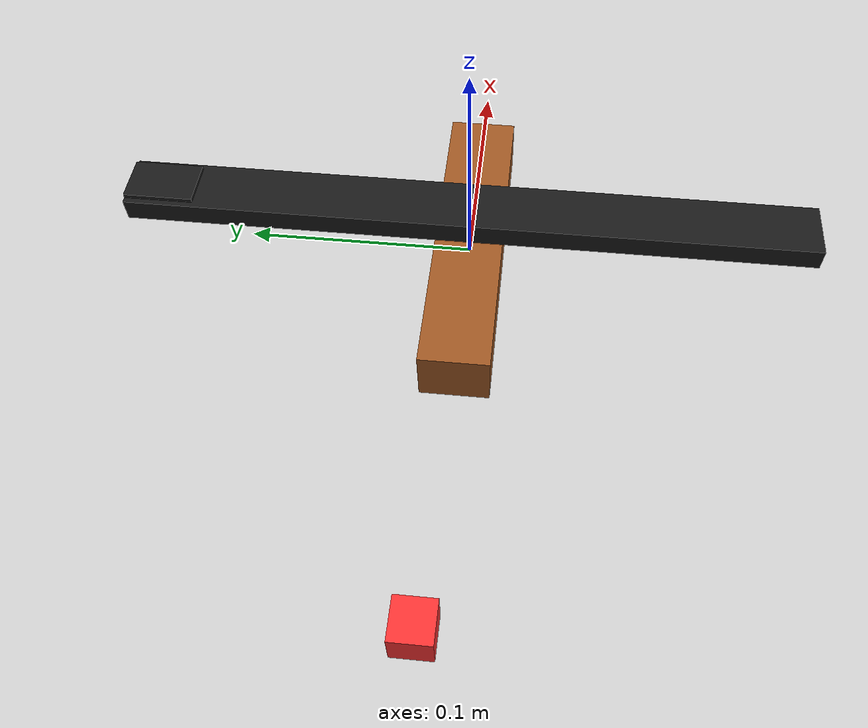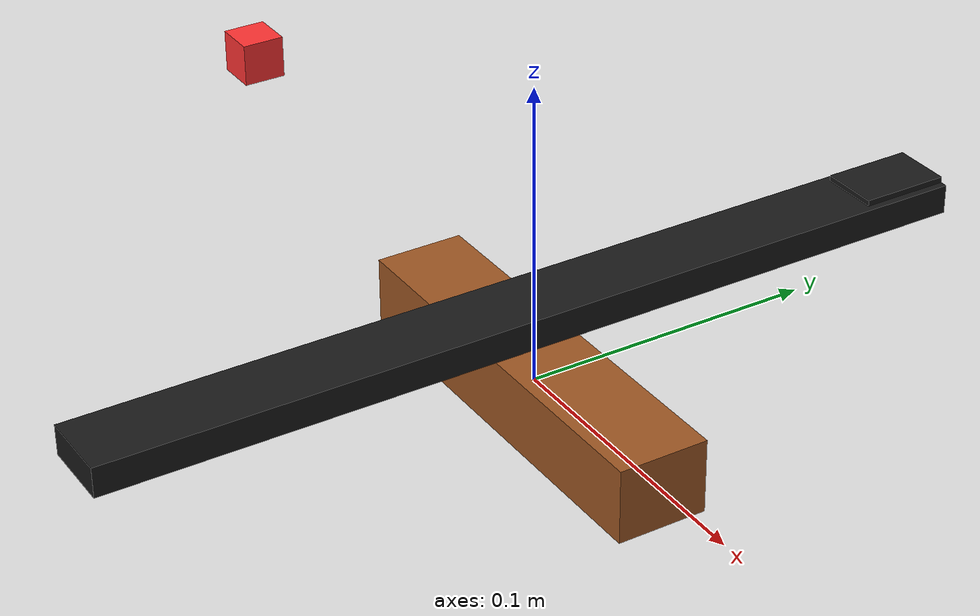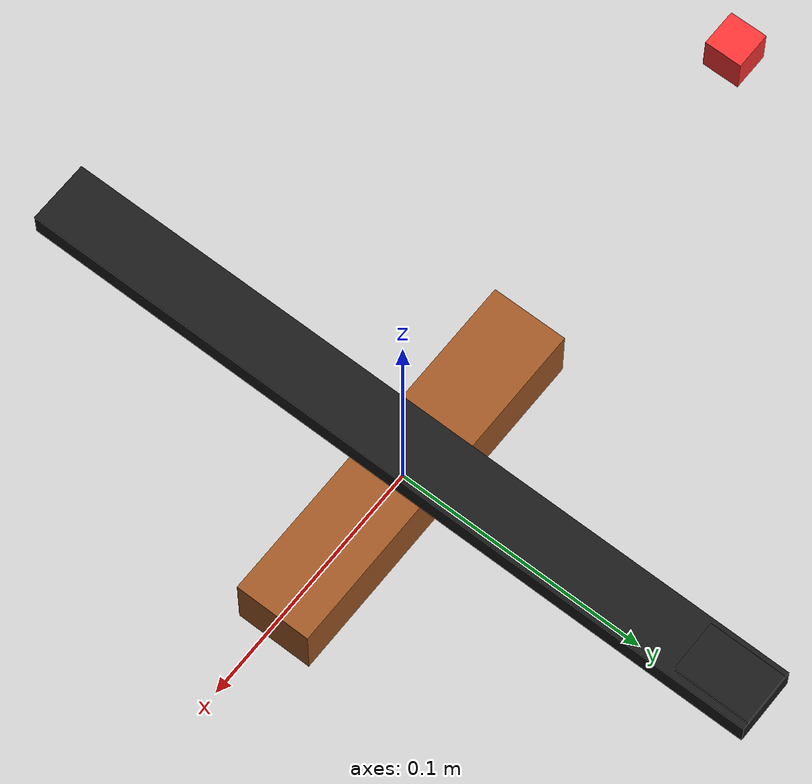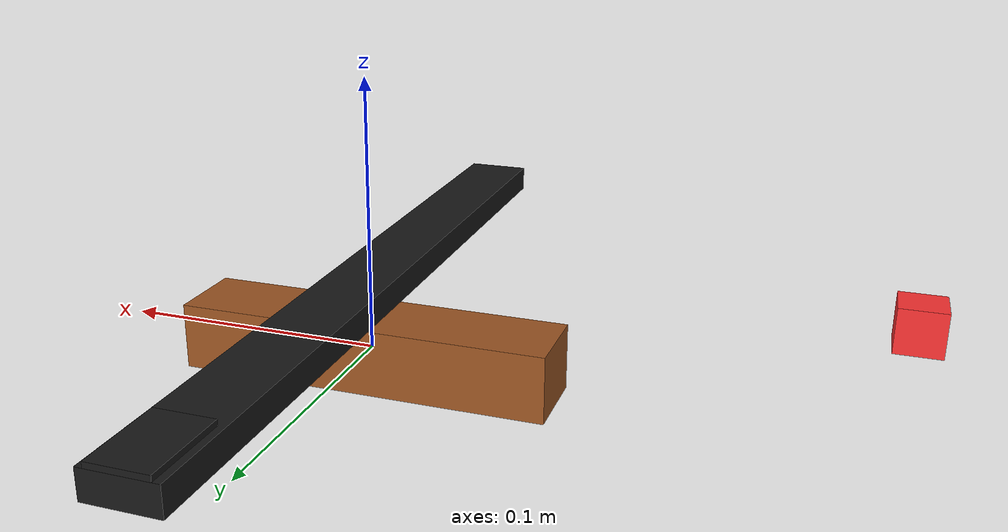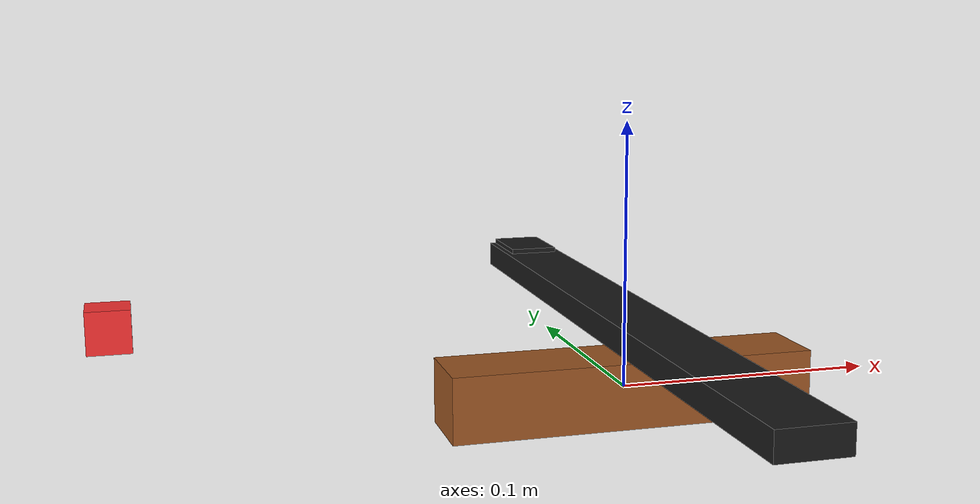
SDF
<?xml version="1.0" ?>
<sdf version="1.6" xmlns:drake="drake.mit.edu">
  <model name="catapult">
    <static>false</static>

    <!-- Thin base wedge welded to the table by the simulator -->
    <link name="base">
      <pose>0 0 0 0 0 0</pose>
      <inertial>
        <mass>1.5</mass>
        <inertia>
          <ixx>0.0025</ixx>
          <iyy>0.0040</iyy>
          <izz>0.0040</izz>
        </inertia>
      </inertial>
      <collision name="base_collision">
        <geometry>
          <box>
            <size>0.14 0.03 0.025</size>
          </box>
        </geometry>
        <drake:proximity_properties>
          <drake:compliant_hydroelastic/>
          <drake:hydroelastic_modulus>1e7</drake:hydroelastic_modulus>
          <drake:mesh_resolution_hint>0.003</drake:mesh_resolution_hint>
          <drake:mu_static value="500.0"/>
          <drake:mu_dynamic value="500.0"/>
        </drake:proximity_properties>
      </collision>
      <visual name="base_visual">
        <geometry>
          <box>
            <size>0.14 0.03 0.025</size>
          </box>
        </geometry>
        <material>
          <ambient>0.45 0.25 0.10 1</ambient>
          <diffuse>0.62 0.34 0.14 1</diffuse>
        </material>
      </visual>
    </link>

    <!-- Lever arm: the mesh is a thin plank with a cup at one end -->
    <link name="arm">
      <pose>0 0 0.025 0 0 0</pose>
      <inertial>
        <mass>1.5</mass>
        <inertia>
          <ixx>0.0025</ixx>
          <iyy>0.0040</iyy>
          <izz>0.0025</izz>
        </inertia>
      </inertial>
      <collision name="arm_collision">
        <geometry>
          <box>
            <size>0.025 0.3 0.01</size>
          </box>
        </geometry>
        <drake:proximity_properties>
          <drake:compliant_hydroelastic/>
          <drake:hydroelastic_modulus>1e7</drake:hydroelastic_modulus>
          <drake:mesh_resolution_hint>0.003</drake:mesh_resolution_hint>
          <drake:mu_static value="500.0"/>
          <drake:mu_dynamic value="500.0"/>
        </drake:proximity_properties>
      </collision>
      <visual name="arm_visual">
        <geometry>
          <box>
            <size>0.025 0.3 0.01</size>
          </box>
        </geometry>
        <material>
          <ambient>0 0 0 1</ambient>
          <diffuse>0.1 0.1 0.1 1</diffuse>
        </material>
      </visual>

      <!-- Small stop at the end of the arm to keep the projectile in place -->
      <collision name="arm_stop_collision">
        <pose>0 0.135 0.00626 0 0 0</pose>
        <geometry>
          <box>
            <size>0.02 0.03 0.002</size>
          </box>
        </geometry>
        <drake:proximity_properties>
          <drake:compliant_hydroelastic/>
          <drake:hydroelastic_modulus>1e7</drake:hydroelastic_modulus>
          <drake:mesh_resolution_hint>0.003</drake:mesh_resolution_hint>
          <drake:mu_static value="500.0"/>
          <drake:mu_dynamic value="500.0"/>
        </drake:proximity_properties>
      </collision>
      <visual name="arm_stop_visual">
        <pose>0 0.135 0.006 0 0 0</pose>
        <geometry>
          <box>
            <size>0.02 0.03 0.002</size>
          </box>
        </geometry>
        <material>
          <ambient>0 0 0 1</ambient>
          <diffuse>0.1 0.1 0.1 1</diffuse>
        </material>
      </visual>
    </link>

    <!-- Projectile kept separate so it can be launched -->
    <link name="projectile">
      <pose>-0.185 0 0.035 0 0 0</pose>
      <inertial>
        <mass>0.015</mass>
        <inertia>
          <ixx>0.000008</ixx>
          <iyy>0.000008</iyy>
          <izz>0.000008</izz>
        </inertia>
      </inertial>
      <collision name="proj_col">
        <geometry>
          <box>
            <size>0.015 0.015 0.015</size>
          </box>
        </geometry>
        <drake:proximity_properties>
          <drake:compliant_hydroelastic/>
          <drake:hydroelastic_modulus>1e7</drake:hydroelastic_modulus>
          <drake:mesh_resolution_hint>0.003</drake:mesh_resolution_hint>
          <drake:mu_static value="500.0"/>
          <drake:mu_dynamic value="500.0"/>
        </drake:proximity_properties>
      </collision>
      <visual name="proj_vis">
        <geometry>
          <box>
            <size>0.015 0.015 0.015</size>
          </box>
        </geometry>
        <material>
          <ambient>0.9 0.1 0.1 1</ambient>
          <diffuse>1.0 0.2 0.2 1</diffuse>
        </material>
      </visual>
    </link>

  </model>
</sdf>
